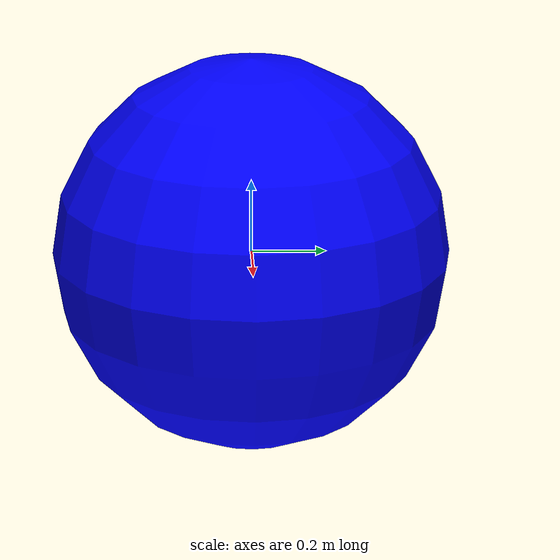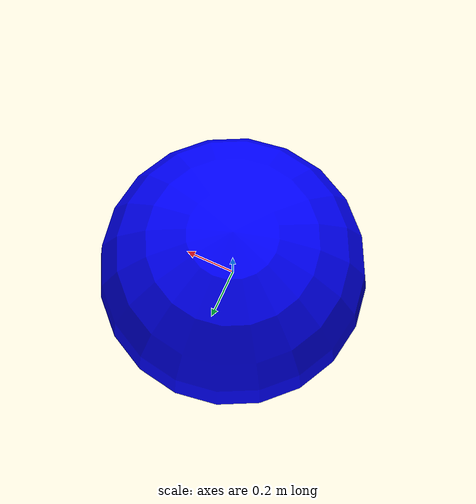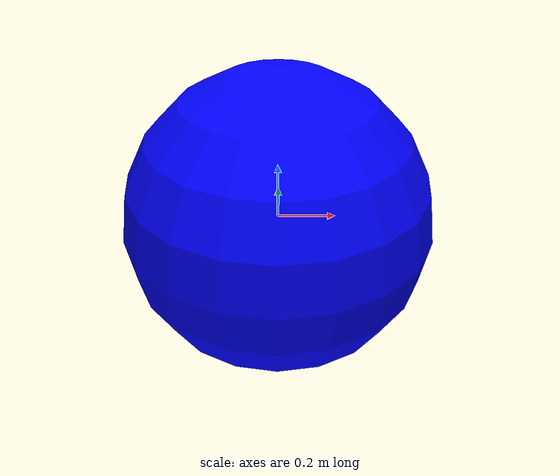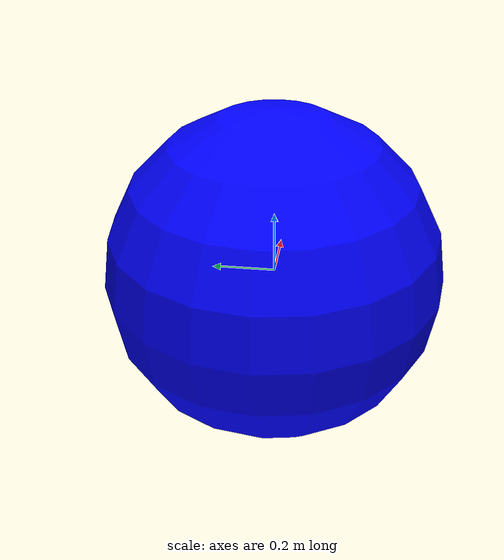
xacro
<?xml version="1.0"?>
<robot xmlns:xacro="http://www.ros.org/wiki/xacro" name="sphere">

    <xacro:arg name="name" default="sphere"/>
    <xacro:arg name="radius" default="0.5361"/>
    <xacro:arg name="mass" default="2"/>
    <xacro:arg name="static" default="false"/>
    <xacro:arg name="r" default="0"/>
    <xacro:arg name="g" default="0"/>
    <xacro:arg name="b" default="1"/>
    <xacro:arg name="a" default="1"/>
    <xacro:arg name="gazebo_color" default="Gazebo/Blue"/>
    <xacro:arg name="kp" default="1e13"/>
    <xacro:arg name="kd" default="1"/>
    <xacro:arg name="mu1" default="0.8"/>
    <xacro:arg name="mu2" default="0.8"/>

    <xacro:property name="name" value="$(arg name)"/>
    <xacro:property name="radius" value="$(arg radius)"/>
    <xacro:property name="mass" value="$(arg mass)"/>
    <xacro:property name="static" value="$(arg static)"/>
    <xacro:property name="r" value="$(arg r)"/>
    <xacro:property name="g" value="$(arg g)"/>
    <xacro:property name="b" value="$(arg b)"/>
    <xacro:property name="a" value="$(arg a)"/>
    <xacro:property name="gazebo_color" value="$(arg gazebo_color)"/>
    <xacro:property name="kp" value="$(arg kp)"/>
    <xacro:property name="kd" value="$(arg kd)"/>
    <xacro:property name="mu1" value="$(arg mu1)"/>
    <xacro:property name="mu2" value="$(arg mu2)"/>

    <link name="${name}">
        <inertial>
            <mass value="${mass}" />
            <!-- solid sphere is Ixx=Iyy=Izz=(2/5)*m*r^2 -->
            <inertia
                ixx="${0.4 * mass * radius * radius}" ixy="0.0"  ixz="0.0"
                iyy="${0.4 * mass * radius * radius}" iyz="0.0"
                izz="${0.4 * mass * radius * radius}" />
        </inertial>
        <visual>
            <origin xyz="0 0 0" rpy="0 0 0"/>
            <geometry>
                <sphere radius="${radius}"/>
            </geometry>
            <material name="cyl_color_rviz">
                <color rgba="${r} ${g} ${b} ${a}"/>
                <ambient>0 0 0 1</ambient>
                <diffuse>0 0 0 1</diffuse>
                <specular>0 0 0 1</specular>
                <emissive>0 0 0 1</emissive>
            </material>
        </visual>
        <collision>
            <origin xyz="0 0 0" rpy="0 0 0"/>
            <geometry>
                <sphere radius="${radius}"/>
            </geometry>
        </collision>
    </link>

    <gazebo>
        <static>${static}</static>
    </gazebo>
    <gazebo reference="${name}">
        <mu1>${mu1}</mu1>
        <mu2>${mu2}</mu2>
        <kp>${kp}</kp>
        <kd>${kd}</kd>
        <material>${gazebo_color}</material>
    </gazebo>

</robot>
